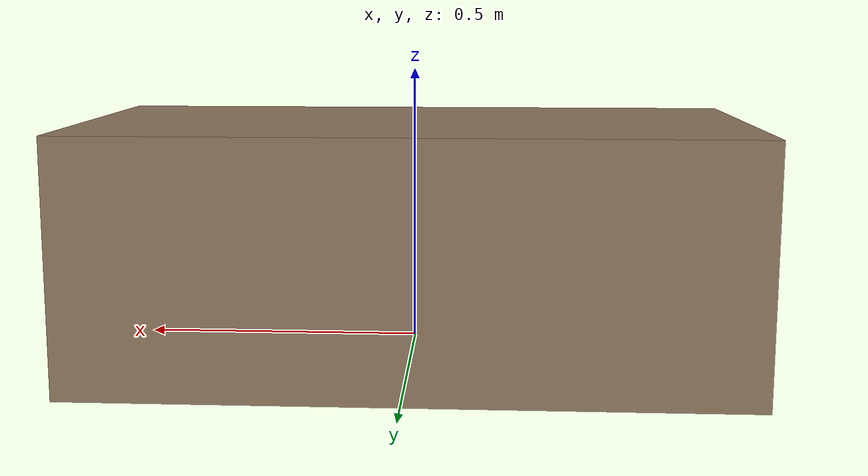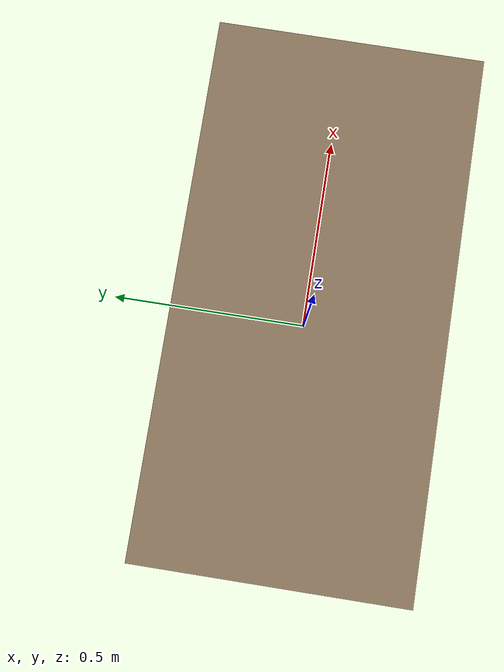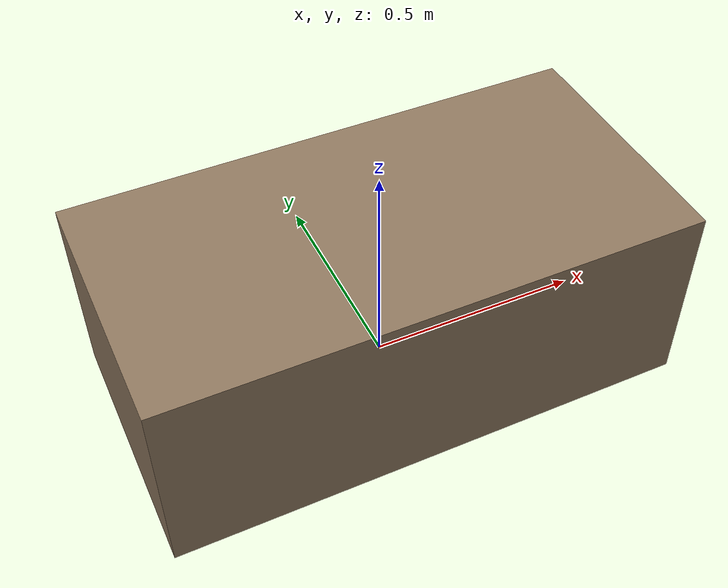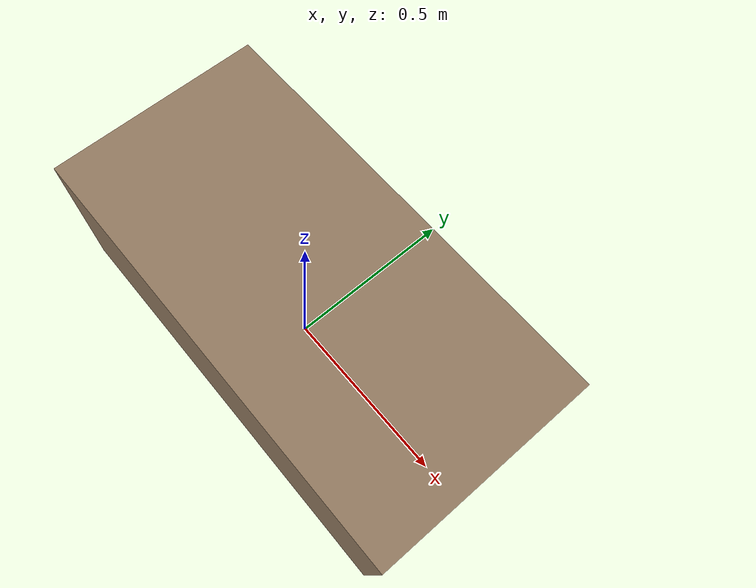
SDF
<?xml version='1.0' encoding='utf-8'?>
<sdf version="1.6">
  <model name="aws_robomaker_residential_CoffeeTable_01">
    <static>true</static>
    <link name="link">
      <collision name="collision_1">
        <pose>0 0 0.18 0 0 0</pose>
        <geometry>
          <box>
            <size>1.2 0.6 0.45</size>
          </box>
        </geometry>
      </collision>
      <visual name="visual_1">
        <pose>0 0 0.18 0 0 0</pose>
        <geometry>
          <box>
            <size>1.2 0.6 0.45</size>
          </box>
        </geometry>
        <material>
          <ambient>0.56 0.47 0.37 1</ambient>
          <diffuse>0.56 0.47 0.37 1</diffuse>
          <specular>0.08 0.08 0.08 1</specular>
        </material>
      </visual>
    </link>
  </model>
</sdf>
